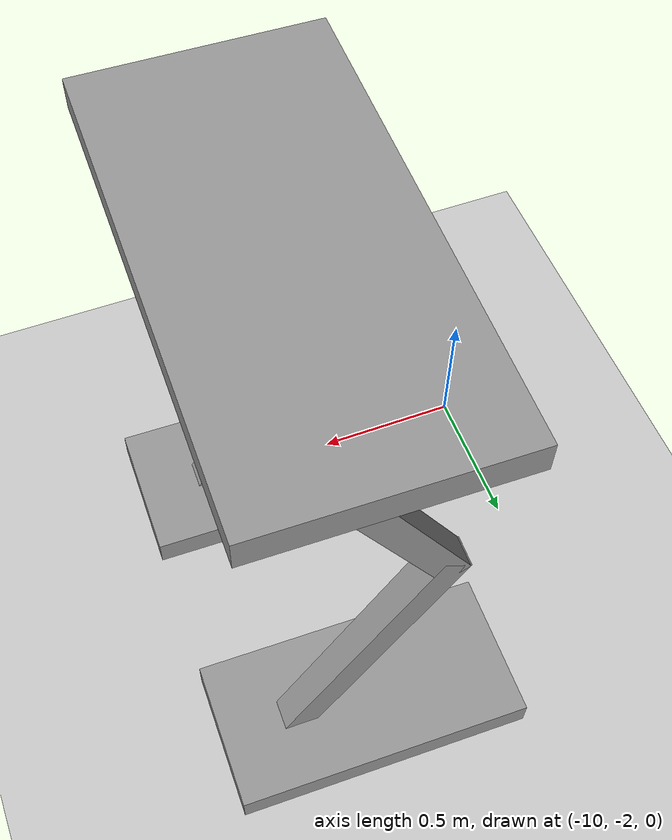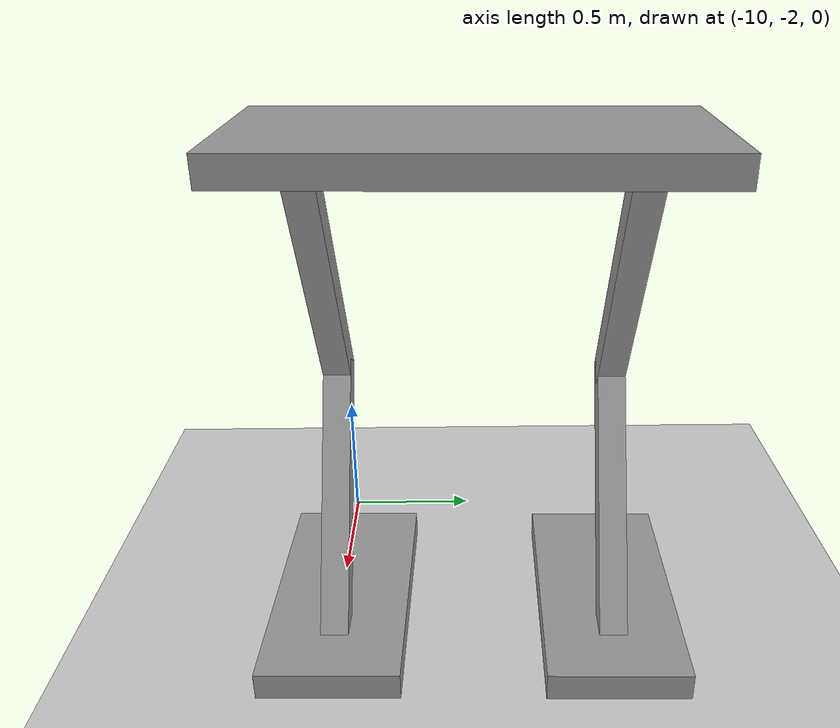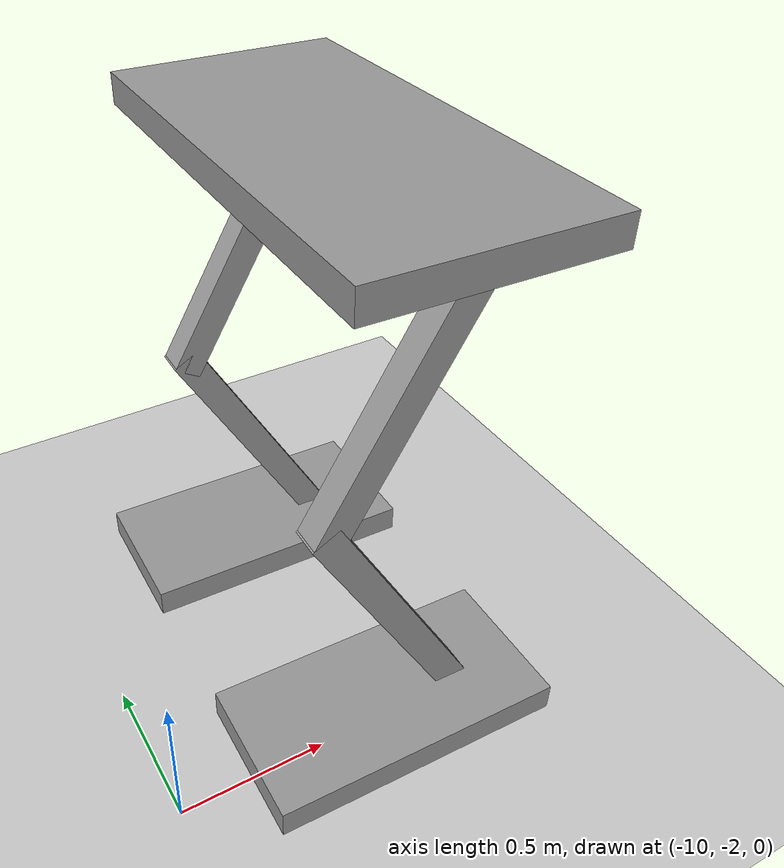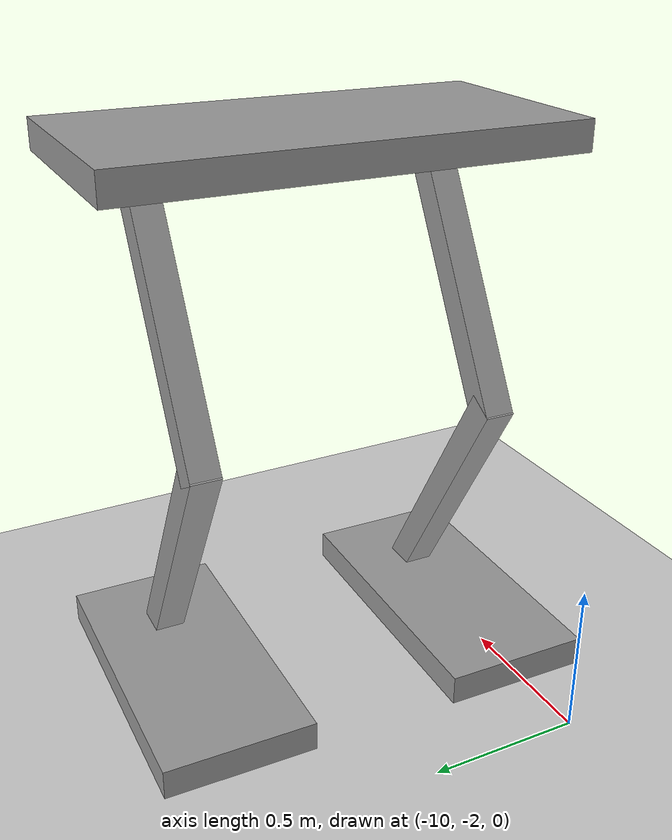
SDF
<sdf version="1.6">
 <world name="default">
  <model name="ground_plane">
   <static>1</static>
   <link name="link">
    <collision name="collision">
     <geometry><plane><normal>0 0 1</normal><size>100 100</size></plane></geometry>
     <surface><friction><ode><mu>100</mu><mu2>50</mu2></ode></friction></surface>
    </collision>
    <visual name="visual">
     <cast_shadows>0</cast_shadows>
     <geometry><plane><normal>0 0 1</normal><size>100 100</size></plane></geometry>
     <material>
      <script><uri>file://media/materials/scripts/gazebo.material</uri><name>Gazebo/Grey</name></script>
     </material>
    </visual>
   </link>
  </model>
  <model name="HumanoidRobot_clone">
   <link name="link_1">
    <pose>0.010779 0.5 -0.738095 0 -0 0</pose>
    <inertial>
     <mass>1</mass>
     <inertia>
      <ixx>0.166667</ixx>
      <ixy>0</ixy>
      <ixz>0</ixz>
      <iyy>0.166667</iyy>
      <iyz>0</iyz>
      <izz>0.166667</izz>
     </inertia>
    </inertial>
    <visual name="visual">
     <geometry><box><size>1 0.5 0.1</size></box></geometry>
     <material>
      <lighting>1</lighting>
      <script><uri>file://media/materials/scripts/gazebo.material</uri><name>Gazebo/Grey</name></script>
      <ambient>0.3 0.3 0.3 1</ambient>
      <diffuse>0.7 0.7 0.7 1</diffuse>
      <specular>0.01 0.01 0.01 1</specular>
      <emissive>0 0 0 1</emissive>
      <shader type="vertex"><normal_map>__default__</normal_map></shader>
     </material>
    </visual>
    <collision name="collision">
     <geometry><box><size>1 0.5 0.1</size></box></geometry>
     <surface>
      <friction>
       <ode><mu>1</mu><mu2>1</mu2><fdir1>0 0 0</fdir1><slip1>0</slip1><slip2>0</slip2></ode>
       <torsional>
        <coefficient>1</coefficient>
        <patch_radius>0</patch_radius>
        <surface_radius>0</surface_radius>
        <use_patch_radius>1</use_patch_radius>
        <ode><slip>0</slip></ode>
       </torsional>
      </friction>
      <bounce><restitution_coefficient>0</restitution_coefficient><threshold>1e+06</threshold></bounce>
      <contact>
       <collide_without_contact>0</collide_without_contact>
       <collide_without_contact_bitmask>1</collide_without_contact_bitmask>
       <collide_bitmask>1</collide_bitmask>
       <ode>
        <soft_cfm>0</soft_cfm>
        <soft_erp>0.2</soft_erp>
        <kp>1e+13</kp>
        <kd>1</kd>
        <max_vel>0.01</max_vel>
        <min_depth>0</min_depth>
       </ode>
       <bullet>
        <split_impulse>1</split_impulse>
        <split_impulse_penetration_threshold>-0.01</split_impulse_penetration_threshold>
        <soft_cfm>0</soft_cfm>
        <soft_erp>0.2</soft_erp>
        <kp>1e+13</kp>
        <kd>1</kd>
       </bullet>
      </contact>
     </surface>
    </collision>
   </link>
   <link name="link_1_clone">
    <pose>0.010779 -0.5 -0.738095 0 -0 0</pose>
    <inertial>
     <mass>1</mass>
     <inertia>
      <ixx>0.166667</ixx>
      <ixy>0</ixy>
      <ixz>0</ixz>
      <iyy>0.166667</iyy>
      <iyz>0</iyz>
      <izz>0.166667</izz>
     </inertia>
    </inertial>
    <visual name="visual">
     <geometry><box><size>1 0.5 0.1</size></box></geometry>
     <material>
      <lighting>1</lighting>
      <script><uri>file://media/materials/scripts/gazebo.material</uri><name>Gazebo/Grey</name></script>
      <ambient>0.3 0.3 0.3 1</ambient>
      <diffuse>0.7 0.7 0.7 1</diffuse>
      <specular>0.01 0.01 0.01 1</specular>
      <emissive>0 0 0 1</emissive>
      <shader type="vertex"><normal_map>__default__</normal_map></shader>
     </material>
    </visual>
    <collision name="collision">
     <geometry><box><size>1 0.5 0.1</size></box></geometry>
     <surface>
      <friction>
       <ode><mu>1</mu><mu2>1</mu2><fdir1>0 0 0</fdir1><slip1>0</slip1><slip2>0</slip2></ode>
       <torsional>
        <coefficient>1</coefficient>
        <patch_radius>0</patch_radius>
        <surface_radius>0</surface_radius>
        <use_patch_radius>1</use_patch_radius>
        <ode><slip>0</slip></ode>
       </torsional>
      </friction>
      <bounce><restitution_coefficient>0</restitution_coefficient><threshold>1e+06</threshold></bounce>
      <contact>
       <collide_without_contact>0</collide_without_contact>
       <collide_without_contact_bitmask>1</collide_without_contact_bitmask>
       <collide_bitmask>1</collide_bitmask>
       <ode>
        <soft_cfm>0</soft_cfm>
        <soft_erp>0.2</soft_erp>
        <kp>1e+13</kp>
        <kd>1</kd>
        <max_vel>0.01</max_vel>
        <min_depth>0</min_depth>
       </ode>
       <bullet>
        <split_impulse>1</split_impulse>
        <split_impulse_penetration_threshold>-0.01</split_impulse_penetration_threshold>
        <soft_cfm>0</soft_cfm>
        <soft_erp>0.2</soft_erp>
        <kp>1e+13</kp>
        <kd>1</kd>
       </bullet>
      </contact>
     </surface>
    </collision>
   </link>
   <link name="link_2">
    <pose>0.010779 0.5 -0.285082 0 0.523598 0</pose>
    <inertial>
     <mass>1</mass>
     <inertia>
      <ixx>0.166667</ixx>
      <ixy>0</ixy>
      <ixz>0</ixz>
      <iyy>0.166667</iyy>
      <iyz>0</iyz>
      <izz>0.166667</izz>
     </inertia>
    </inertial>
    <visual name="visual">
     <geometry><box><size>0.1 0.1 1</size></box></geometry>
     <material>
      <lighting>1</lighting>
      <script><uri>file://media/materials/scripts/gazebo.material</uri><name>Gazebo/Grey</name></script>
      <ambient>0.3 0.3 0.3 1</ambient>
      <diffuse>0.7 0.7 0.7 1</diffuse>
      <specular>0.01 0.01 0.01 1</specular>
      <emissive>0 0 0 1</emissive>
      <shader type="vertex"><normal_map>__default__</normal_map></shader>
     </material>
    </visual>
    <collision name="collision">
     <geometry><box><size>0.1 0.1 1</size></box></geometry>
     <surface>
      <friction>
       <ode><mu>1</mu><mu2>1</mu2><fdir1>0 0 0</fdir1><slip1>0</slip1><slip2>0</slip2></ode>
       <torsional>
        <coefficient>1</coefficient>
        <patch_radius>0</patch_radius>
        <surface_radius>0</surface_radius>
        <use_patch_radius>1</use_patch_radius>
        <ode><slip>0</slip></ode>
       </torsional>
      </friction>
      <bounce><restitution_coefficient>0</restitution_coefficient><threshold>1e+06</threshold></bounce>
      <contact>
       <collide_without_contact>0</collide_without_contact>
       <collide_without_contact_bitmask>1</collide_without_contact_bitmask>
       <collide_bitmask>1</collide_bitmask>
       <ode>
        <soft_cfm>0</soft_cfm>
        <soft_erp>0.2</soft_erp>
        <kp>1e+13</kp>
        <kd>1</kd>
        <max_vel>0.01</max_vel>
        <min_depth>0</min_depth>
       </ode>
       <bullet>
        <split_impulse>1</split_impulse>
        <split_impulse_penetration_threshold>-0.01</split_impulse_penetration_threshold>
        <soft_cfm>0</soft_cfm>
        <soft_erp>0.2</soft_erp>
        <kp>1e+13</kp>
        <kd>1</kd>
       </bullet>
      </contact>
     </surface>
    </collision>
   </link>
   <link name="link_2_clone">
    <pose>0.009081 0.5 0.528002 0 -0.523598 0</pose>
    <inertial>
     <mass>1</mass>
     <inertia>
      <ixx>0.166667</ixx>
      <ixy>0</ixy>
      <ixz>0</ixz>
      <iyy>0.166667</iyy>
      <iyz>0</iyz>
      <izz>0.166667</izz>
     </inertia>
    </inertial>
    <visual name="visual">
     <geometry><box><size>0.1 0.1 1</size></box></geometry>
     <material>
      <lighting>1</lighting>
      <script><uri>file://media/materials/scripts/gazebo.material</uri><name>Gazebo/Grey</name></script>
      <ambient>0.3 0.3 0.3 1</ambient>
      <diffuse>0.7 0.7 0.7 1</diffuse>
      <specular>0.01 0.01 0.01 1</specular>
      <emissive>0 0 0 1</emissive>
      <shader type="vertex"><normal_map>__default__</normal_map></shader>
     </material>
    </visual>
    <collision name="collision">
     <geometry><box><size>0.1 0.1 1</size></box></geometry>
     <surface>
      <friction>
       <ode><mu>1</mu><mu2>1</mu2><fdir1>0 0 0</fdir1><slip1>0</slip1><slip2>0</slip2></ode>
       <torsional>
        <coefficient>1</coefficient>
        <patch_radius>0</patch_radius>
        <surface_radius>0</surface_radius>
        <use_patch_radius>1</use_patch_radius>
        <ode><slip>0</slip></ode>
       </torsional>
      </friction>
      <bounce><restitution_coefficient>0</restitution_coefficient><threshold>1e+06</threshold></bounce>
      <contact>
       <collide_without_contact>0</collide_without_contact>
       <collide_without_contact_bitmask>1</collide_without_contact_bitmask>
       <collide_bitmask>1</collide_bitmask>
       <ode>
        <soft_cfm>0</soft_cfm>
        <soft_erp>0.2</soft_erp>
        <kp>1e+13</kp>
        <kd>1</kd>
        <max_vel>0.01</max_vel>
        <min_depth>0</min_depth>
       </ode>
       <bullet>
        <split_impulse>1</split_impulse>
        <split_impulse_penetration_threshold>-0.01</split_impulse_penetration_threshold>
        <soft_cfm>0</soft_cfm>
        <soft_erp>0.2</soft_erp>
        <kp>1e+13</kp>
        <kd>1</kd>
       </bullet>
      </contact>
     </surface>
    </collision>
   </link>
   <link name="link_2_clone_0">
    <pose>0.010779 -0.5 -0.288095 0 0.523598 0</pose>
    <inertial>
     <mass>1</mass>
     <inertia>
      <ixx>0.166667</ixx>
      <ixy>0</ixy>
      <ixz>0</ixz>
      <iyy>0.166667</iyy>
      <iyz>0</iyz>
      <izz>0.166667</izz>
     </inertia>
    </inertial>
    <visual name="visual">
     <geometry><box><size>0.1 0.1 1</size></box></geometry>
     <material>
      <lighting>1</lighting>
      <script><uri>file://media/materials/scripts/gazebo.material</uri><name>Gazebo/Grey</name></script>
      <ambient>0.3 0.3 0.3 1</ambient>
      <diffuse>0.7 0.7 0.7 1</diffuse>
      <specular>0.01 0.01 0.01 1</specular>
      <emissive>0 0 0 1</emissive>
      <shader type="vertex"><normal_map>__default__</normal_map></shader>
     </material>
    </visual>
    <collision name="collision">
     <geometry><box><size>0.1 0.1 1</size></box></geometry>
     <surface>
      <friction>
       <ode><mu>1</mu><mu2>1</mu2><fdir1>0 0 0</fdir1><slip1>0</slip1><slip2>0</slip2></ode>
       <torsional>
        <coefficient>1</coefficient>
        <patch_radius>0</patch_radius>
        <surface_radius>0</surface_radius>
        <use_patch_radius>1</use_patch_radius>
        <ode><slip>0</slip></ode>
       </torsional>
      </friction>
      <bounce><restitution_coefficient>0</restitution_coefficient><threshold>1e+06</threshold></bounce>
      <contact>
       <collide_without_contact>0</collide_without_contact>
       <collide_without_contact_bitmask>1</collide_without_contact_bitmask>
       <collide_bitmask>1</collide_bitmask>
       <ode>
        <soft_cfm>0</soft_cfm>
        <soft_erp>0.2</soft_erp>
        <kp>1e+13</kp>
        <kd>1</kd>
        <max_vel>0.01</max_vel>
        <min_depth>0</min_depth>
       </ode>
       <bullet>
        <split_impulse>1</split_impulse>
        <split_impulse_penetration_threshold>-0.01</split_impulse_penetration_threshold>
        <soft_cfm>0</soft_cfm>
        <soft_erp>0.2</soft_erp>
        <kp>1e+13</kp>
        <kd>1</kd>
       </bullet>
      </contact>
     </surface>
    </collision>
   </link>
   <link name="link_2_clone_clone">
    <pose>0.009081 -0.5 0.524989 0 -0.523598 0</pose>
    <inertial>
     <mass>1</mass>
     <inertia>
      <ixx>0.166667</ixx>
      <ixy>0</ixy>
      <ixz>0</ixz>
      <iyy>0.166667</iyy>
      <iyz>0</iyz>
      <izz>0.166667</izz>
     </inertia>
    </inertial>
    <visual name="visual">
     <geometry><box><size>0.1 0.1 1</size></box></geometry>
     <material>
      <lighting>1</lighting>
      <script><uri>file://media/materials/scripts/gazebo.material</uri><name>Gazebo/Grey</name></script>
      <ambient>0.3 0.3 0.3 1</ambient>
      <diffuse>0.7 0.7 0.7 1</diffuse>
      <specular>0.01 0.01 0.01 1</specular>
      <emissive>0 0 0 1</emissive>
      <shader type="vertex"><normal_map>__default__</normal_map></shader>
     </material>
    </visual>
    <collision name="collision">
     <geometry><box><size>0.1 0.1 1</size></box></geometry>
     <surface>
      <friction>
       <ode><mu>1</mu><mu2>1</mu2><fdir1>0 0 0</fdir1><slip1>0</slip1><slip2>0</slip2></ode>
       <torsional>
        <coefficient>1</coefficient>
        <patch_radius>0</patch_radius>
        <surface_radius>0</surface_radius>
        <use_patch_radius>1</use_patch_radius>
        <ode><slip>0</slip></ode>
       </torsional>
      </friction>
      <bounce><restitution_coefficient>0</restitution_coefficient><threshold>1e+06</threshold></bounce>
      <contact>
       <collide_without_contact>0</collide_without_contact>
       <collide_without_contact_bitmask>1</collide_without_contact_bitmask>
       <collide_bitmask>1</collide_bitmask>
       <ode>
        <soft_cfm>0</soft_cfm>
        <soft_erp>0.2</soft_erp>
        <kp>1e+13</kp>
        <kd>1</kd>
        <max_vel>0.01</max_vel>
        <min_depth>0</min_depth>
       </ode>
       <bullet>
        <split_impulse>1</split_impulse>
        <split_impulse_penetration_threshold>-0.01</split_impulse_penetration_threshold>
        <soft_cfm>0</soft_cfm>
        <soft_erp>0.2</soft_erp>
        <kp>1e+13</kp>
        <kd>1</kd>
       </bullet>
      </contact>
     </surface>
    </collision>
   </link>
   <link name="link_3">
    <pose>-0.061278 0 0.996374 0 -0 0</pose>
    <inertial>
     <mass>1</mass>
     <inertia>
      <ixx>0.166667</ixx>
      <ixy>0</ixy>
      <ixz>0</ixz>
      <iyy>0.166667</iyy>
      <iyz>0</iyz>
      <izz>0.166667</izz>
     </inertia>
    </inertial>
    <visual name="visual">
     <geometry><box><size>0.75 1.5 0.1</size></box></geometry>
     <material>
      <lighting>1</lighting>
      <script><uri>file://media/materials/scripts/gazebo.material</uri><name>Gazebo/Grey</name></script>
      <ambient>0.3 0.3 0.3 1</ambient>
      <diffuse>0.7 0.7 0.7 1</diffuse>
      <specular>0.01 0.01 0.01 1</specular>
      <emissive>0 0 0 1</emissive>
      <shader type="vertex"><normal_map>__default__</normal_map></shader>
     </material>
    </visual>
    <collision name="collision">
     <geometry><box><size>0.75 1.5 0.1</size></box></geometry>
     <surface>
      <friction>
       <ode><mu>1</mu><mu2>1</mu2><fdir1>0 0 0</fdir1><slip1>0</slip1><slip2>0</slip2></ode>
       <torsional>
        <coefficient>1</coefficient>
        <patch_radius>0</patch_radius>
        <surface_radius>0</surface_radius>
        <use_patch_radius>1</use_patch_radius>
        <ode><slip>0</slip></ode>
       </torsional>
      </friction>
      <bounce><restitution_coefficient>0</restitution_coefficient><threshold>1e+06</threshold></bounce>
      <contact>
       <collide_without_contact>0</collide_without_contact>
       <collide_without_contact_bitmask>1</collide_without_contact_bitmask>
       <collide_bitmask>1</collide_bitmask>
       <ode>
        <soft_cfm>0</soft_cfm>
        <soft_erp>0.2</soft_erp>
        <kp>1e+13</kp>
        <kd>1</kd>
        <max_vel>0.01</max_vel>
        <min_depth>0</min_depth>
       </ode>
       <bullet>
        <split_impulse>1</split_impulse>
        <split_impulse_penetration_threshold>-0.01</split_impulse_penetration_threshold>
        <soft_cfm>0</soft_cfm>
        <soft_erp>0.2</soft_erp>
        <kp>1e+13</kp>
        <kd>1</kd>
       </bullet>
      </contact>
     </surface>
    </collision>
   </link>
   <joint name="link_1_JOINT_0" type="revolute">
    <parent>link_1</parent>
    <child>link_2</child>
    <axis>
     <xyz>-1 0 0</xyz>
     <use_parent_model_frame>0</use_parent_model_frame>
     <limit>
      <lower>-1.79769e+308</lower>
      <upper>1.79769e+308</upper>
      <effort>-1</effort>
      <velocity>-1</velocity>
     </limit>
     <dynamics>
      <spring_reference>0</spring_reference>
      <spring_stiffness>0</spring_stiffness>
      <damping>0</damping>
      <friction>0</friction>
     </dynamics>
    </axis>
    <physics>
     <ode><limit><cfm>0</cfm><erp>0.2</erp></limit><suspension><cfm>0</cfm><erp>0.2</erp></suspension></ode>
    </physics>
   </joint>
   <joint name="link_1_clone_JOINT_2" type="revolute">
    <parent>link_1_clone</parent>
    <child>link_2_clone_0</child>
    <axis>
     <xyz>-1 0 0</xyz>
     <use_parent_model_frame>0</use_parent_model_frame>
     <limit>
      <lower>-1.79769e+308</lower>
      <upper>1.79769e+308</upper>
      <effort>-1</effort>
      <velocity>-1</velocity>
     </limit>
     <dynamics>
      <spring_reference>0</spring_reference>
      <spring_stiffness>0</spring_stiffness>
      <damping>0</damping>
     </dynamics>
    </axis>
    <physics>
     <ode><limit><cfm>0</cfm><erp>0.2</erp></limit><suspension><cfm>0</cfm><erp>0.2</erp></suspension></ode>
    </physics>
   </joint>
   <joint name="link_2_JOINT_1" type="revolute">
    <parent>link_2</parent>
    <child>link_2_clone</child>
    <axis>
     <xyz>-1 0 0</xyz>
     <use_parent_model_frame>0</use_parent_model_frame>
     <limit>
      <lower>-1.79769e+308</lower>
      <upper>1.79769e+308</upper>
      <effort>-1</effort>
      <velocity>-1</velocity>
     </limit>
     <dynamics>
      <spring_reference>0</spring_reference>
      <spring_stiffness>0</spring_stiffness>
      <damping>0</damping>
     </dynamics>
    </axis>
    <physics>
     <ode><limit><cfm>0</cfm><erp>0.2</erp></limit><suspension><cfm>0</cfm><erp>0.2</erp></suspension></ode>
    </physics>
   </joint>
   <joint name="link_2_clone_0_JOINT_3" type="revolute">
    <parent>link_2_clone_0</parent>
    <child>link_2_clone_clone</child>
    <axis>
     <xyz>-1 0 0</xyz>
     <use_parent_model_frame>0</use_parent_model_frame>
     <limit>
      <lower>-1.79769e+308</lower>
      <upper>1.79769e+308</upper>
      <effort>-1</effort>
      <velocity>-1</velocity>
     </limit>
     <dynamics>
      <spring_reference>0</spring_reference>
      <spring_stiffness>0</spring_stiffness>
      <damping>0</damping>
     </dynamics>
    </axis>
    <physics>
     <ode><limit><cfm>0</cfm><erp>0.2</erp></limit><suspension><cfm>0</cfm><erp>0.2</erp></suspension></ode>
    </physics>
   </joint>
   <joint name="link_2_clone_JOINT_5" type="revolute">
    <parent>link_2_clone</parent>
    <child>link_3</child>
    <axis>
     <xyz>1 0 0</xyz>
     <use_parent_model_frame>0</use_parent_model_frame>
     <limit>
      <lower>-1.79769e+308</lower>
      <upper>1.79769e+308</upper>
      <effort>-1</effort>
      <velocity>-1</velocity>
     </limit>
     <dynamics>
      <spring_reference>0</spring_reference>
      <spring_stiffness>0</spring_stiffness>
      <damping>0</damping>
     </dynamics>
    </axis>
    <physics>
     <ode><limit><cfm>0</cfm><erp>0.2</erp></limit><suspension><cfm>0</cfm><erp>0.2</erp></suspension></ode>
    </physics>
   </joint>
   <joint name="link_2_clone_clone_JOINT_6" type="revolute">
    <parent>link_2_clone_clone</parent>
    <child>link_3</child>
    <axis>
     <xyz>1 0 0</xyz>
     <use_parent_model_frame>0</use_parent_model_frame>
     <limit>
      <lower>-1.79769e+308</lower>
      <upper>1.79769e+308</upper>
      <effort>-1</effort>
      <velocity>-1</velocity>
     </limit>
     <dynamics>
      <spring_reference>0</spring_reference>
      <spring_stiffness>0</spring_stiffness>
      <damping>0</damping>
     </dynamics>
    </axis>
    <physics>
     <ode><limit><cfm>0</cfm><erp>0.2</erp></limit><suspension><cfm>0</cfm><erp>0.2</erp></suspension></ode>
    </physics>
   </joint>
   <static>0</static>
   <pose>-9.23269 -1.47988 0.788094 0 -2e-06 3.11939</pose>
  </model>
 </world>
</sdf>
